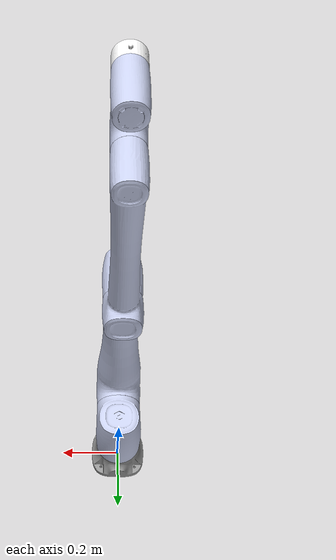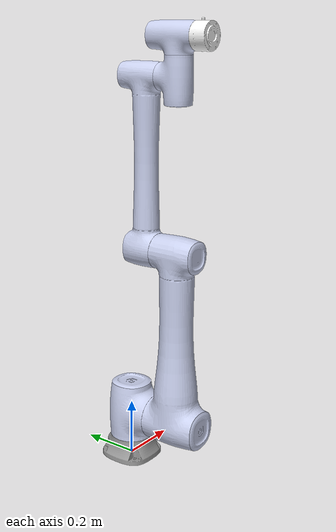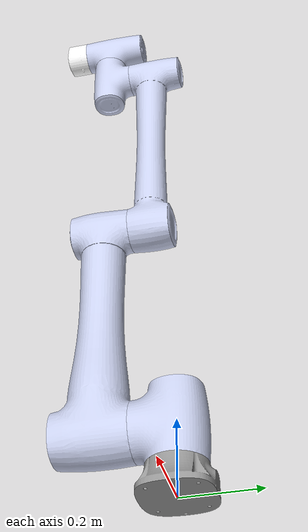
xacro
<?xml version="1.0"?>
<robot xmlns:xacro="http://www.ros.org/wiki/xacro" name="cr10af_robot">
    <xacro:arg name="initial_positions_file" default="initial_positions.yaml" />

    <!-- Import cr10af_robot urdf file -->
    <xacro:include filename="$(find dobot_rviz)/urdf/cr10af_robot.urdf" />

    <!-- Import control_xacro -->
    <xacro:include filename="cr10af_robot.ros2_control.xacro" />

    <xacro:cr10af_robot_ros2_control name="FakeSystem" initial_positions_file="$(arg initial_positions_file)"/>

</robot>

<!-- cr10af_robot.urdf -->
<robot
  name="cr10af_robot">
  <link name="dummy_link"/>
  <link
    name="base_link">
    <inertial>
      <origin
        xyz="-3.7612E-06 0.0011357 0.032382"
        rpy="0 0 0" />
      <mass
        value="2.01" />
      <inertia
        ixx="0.0042064"
        ixy="6.3817E-07"
        ixz="4.917E-07"
        iyy="0.0040224"
        iyz="1.8082E-05"
        izz="0.0067707" />
    </inertial>
    <visual>
      <origin
        xyz="0 0 0"
        rpy="0 0 0" />
      <geometry>
        <mesh
          filename="package://dobot_rviz/meshes/cr10af/base_link.STL" />
      </geometry>
      <material
        name="">
        <color
          rgba="0.59216 0.59216 0.59216 1" />
      </material>
    </visual>
    <collision>
      <origin
        xyz="0 0 0"
        rpy="0 0 0" />
      <geometry>
        <mesh
          filename="package://dobot_rviz/meshes/cr10af/base_link.STL" />
      </geometry>
    </collision>
  </link>
  <joint name="dummy_joint" type="fixed">
      <parent link="dummy_link" />
      <child  link="base_link" />
    </joint>
  <link
    name="J1">
    <inertial>
      <origin
        xyz="-5.9674E-07 -0.011961 0.10128"
        rpy="0 0 0" />
      <mass
        value="8.97" />
      <inertia
        ixx="0.020878"
        ixy="-2.467E-08"
        ixz="9.3616E-08"
        iyy="0.018796"
        iyz="0.00012915"
        izz="0.015433" />
    </inertial>
    <visual>
      <origin
        xyz="0 0 0"
        rpy="0 0 0" />
      <geometry>
        <mesh
          filename="package://dobot_rviz/meshes/cr10af/J1.STL" />
      </geometry>
      <material
        name="">
        <color
          rgba="0.79216 0.81961 0.93333 1" />
      </material>
    </visual>
    <collision>
      <origin
        xyz="0 0 0"
        rpy="0 0 0" />
      <geometry>
        <mesh
          filename="package://dobot_rviz/meshes/cr10af/J1.STL" />
      </geometry>
    </collision>
  </link>
  <joint
    name="joint1"
    type="revolute">
    <origin
      xyz="0 0 0.079"
      rpy="0 0 0" />
    <parent
      link="base_link" />
    <child
      link="J1" />
    <axis
      xyz="0 0 1" />
    <limit
      lower="-6.2831"
      upper="6.2831"
      effort="0"
      velocity="0" />
  </joint>
  <link
    name="J2">
    <inertial>
      <origin
        xyz="2.1881E-07 -0.093266 0.24604"
        rpy="0 0 0" />
      <mass
        value="16.9" />
      <inertia
        ixx="0.60997"
        ixy="3.4182E-07"
        ixz="-1.0197E-06"
        iyy="0.60329"
        iyz="0.0035505"
        izz="0.034" />
    </inertial>
    <visual>
      <origin
        xyz="0 0 0"
        rpy="0 0 0" />
      <geometry>
        <mesh
          filename="package://dobot_rviz/meshes/cr10af/J2.STL" />
      </geometry>
      <material
        name="">
        <color
          rgba="0.79216 0.81961 0.93333 1" />
      </material>
    </visual>
    <collision>
      <origin
        xyz="0 0 0"
        rpy="0 0 0" />
      <geometry>
        <mesh
          filename="package://dobot_rviz/meshes/cr10af/J2.STL" />
      </geometry>
    </collision>
  </link>
  <joint
    name="joint2"
    type="revolute">
    <origin
      xyz="0 -0.102 0.0975"
      rpy="0 0 0" />
    <parent
      link="J1" />
    <child
      link="J2" />
    <axis
      xyz="0 -1 0" />
    <limit
      lower="-6.2831"
      upper="6.2831"
      effort="0"
      velocity="0" />
  </joint>
  <link
    name="J3">
    <inertial>
      <origin
        xyz="-9.4859E-08 0.05571 0.27104"
        rpy="0 0 0" />
      <mass
        value="5.47" />
      <inertia
        ixx="0.23209"
        ixy="-6.3966E-09"
        ixz="-3.007E-07"
        iyy="0.23101"
        iyz="0.0026298"
        izz="0.0068608" />
    </inertial>
    <visual>
      <origin
        xyz="0 0 0"
        rpy="0 0 0" />
      <geometry>
        <mesh
          filename="package://dobot_rviz/meshes/cr10af/J3.STL" />
      </geometry>
      <material
        name="">
        <color
          rgba="0.79216 0.81961 0.93333 1" />
      </material>
    </visual>
    <collision>
      <origin
        xyz="0 0 0"
        rpy="0 0 0" />
      <geometry>
        <mesh
          filename="package://dobot_rviz/meshes/cr10af/J3.STL" />
      </geometry>
    </collision>
  </link>
  <joint
    name="joint3"
    type="revolute">
    <origin
      xyz="0 -0.015 0.607"
      rpy="0 0 0" />
    <parent
      link="J2" />
    <child
      link="J3" />
    <axis
      xyz="0 1 0" />
    <limit
      lower="-2.7925"
      upper="2.7925"
      effort="0"
      velocity="0" />
  </joint>
  <link
    name="J4">
    <inertial>
      <origin
        xyz="2.8401E-07 -0.060432 -0.010119"
        rpy="0 0 0" />
      <mass
        value="2.6" />
      <inertia
        ixx="0.0027385"
        ixy="-3.2473E-09"
        ixz="-1.4591E-09"
        iyy="0.0025464"
        iyz="6.9168E-05"
        izz="0.0014808" />
    </inertial>
    <visual>
      <origin
        xyz="0 0 0"
        rpy="0 0 0" />
      <geometry>
        <mesh
          filename="package://dobot_rviz/meshes/cr10af/J4.STL" />
      </geometry>
      <material
        name="">
        <color
          rgba="0.79216 0.81961 0.93333 1" />
      </material>
    </visual>
    <collision>
      <origin
        xyz="0 0 0"
        rpy="0 0 0" />
      <geometry>
        <mesh
          filename="package://dobot_rviz/meshes/cr10af/J4.STL" />
      </geometry>
    </collision>
  </link>
  <joint
    name="joint4"
    type="revolute">
    <origin
      xyz="0 -0.0075 0.568"
      rpy="0 0 0" />
    <parent
      link="J3" />
    <child
      link="J4" />
    <axis
      xyz="0 -1 0" />
    <limit
      lower="-6.2831"
      upper="6.2831"
      effort="0"
      velocity="0" />
  </joint>
  <link
    name="J5">
    <inertial>
      <origin
        xyz="-5.8252E-07 0.016958 0.053728"
        rpy="0 0 0" />
      <mass
        value="2.6" />
      <inertia
        ixx="0.0030944"
        ixy="-3.8416E-08"
        ixz="-1.9864E-08"
        iyy="0.0013893"
        iyz="6.7569E-05"
        izz="0.0030186" />
    </inertial>
    <visual>
      <origin
        xyz="0 0 0"
        rpy="0 0 0" />
      <geometry>
        <mesh
          filename="package://dobot_rviz/meshes/cr10af/J5.STL" />
      </geometry>
      <material
        name="">
        <color
          rgba="0.79216 0.81961 0.93333 1" />
      </material>
    </visual>
    <collision>
      <origin
        xyz="0 0 0"
        rpy="0 0 0" />
      <geometry>
        <mesh
          filename="package://dobot_rviz/meshes/cr10af/J5.STL" />
      </geometry>
    </collision>
  </link>
  <joint
    name="joint5"
    type="revolute">
    <origin
      xyz="0 -0.066501 0.068"
      rpy="0 0 0" />
    <parent
      link="J4" />
    <child
      link="J5" />
    <axis
      xyz="0 0 1" />
    <limit
      lower="-6.2831"
      upper="6.2831"
      effort="0"
      velocity="0" />
  </joint>
  <link
    name="J6">
    <inertial>
      <origin
        xyz="7.3738E-09 -0.028312 6.3267E-05"
        rpy="0 0 0" />
      <mass
        value="0.4" />
      <inertia
        ixx="0.00027773"
        ixy="-2.9004E-11"
        ixz="1.4444E-10"
        iyy="0.00035983"
        iyz="3.5391E-07"
        izz="0.00027649" />
    </inertial>
    <visual>
      <origin
        xyz="0 0 0"
        rpy="0 0 0" />
      <geometry>
        <mesh
          filename="package://dobot_rviz/meshes/cr10af/J6.STL" />
      </geometry>
      <material
        name="">
        <color
          rgba="1 1 1 1" />
      </material>
    </visual>
    <collision>
      <origin
        xyz="0 0 0"
        rpy="0 0 0" />
      <geometry>
        <mesh
          filename="package://dobot_rviz/meshes/cr10af/J6.STL" />
      </geometry>
    </collision>
  </link>
  <joint
    name="joint6"
    type="revolute">
    <origin
      xyz="0 -0.066499 0.057"
      rpy="0 0 0" />
    <parent
      link="J5" />
    <child
      link="J6" />
    <axis
      xyz="0 -1 0" />
    <limit
      lower="-6.2831"
      upper="6.2831"
      effort="0"
      velocity="0" />
  </joint>
</robot>
